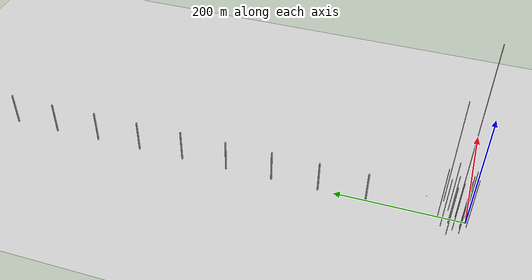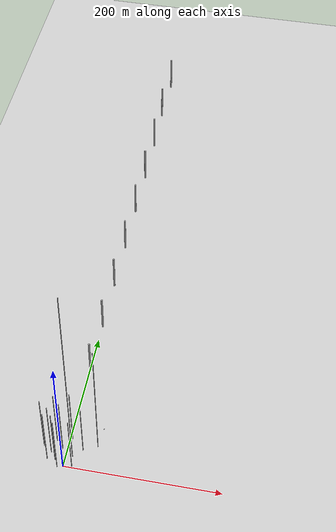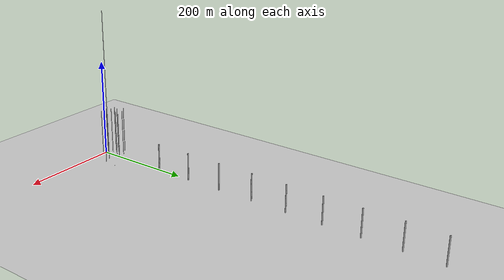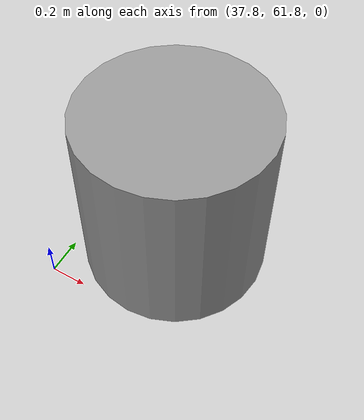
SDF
<sdf version="1.6">
 <world name="default">
  <scene>
   <shadows>0</shadows>
   <sky><time>10</time></sky>
   <ambient>0.4 0.4 0.4 1</ambient>
   <background>0.7 0.7 0.7 1</background>
  </scene>
  <physics name="default_physics" default="0" type="ode">
   <ode>
    <solver>
     <type>quick</type>
     <iters>100</iters>
     <sor>1</sor>
     <use_dynamic_moi_rescaling>0</use_dynamic_moi_rescaling>
    </solver>
    <constraints>
     <cfm>0</cfm>
     <erp>0.9</erp>
     <contact_max_correcting_vel>0.1</contact_max_correcting_vel>
     <contact_surface_layer>0</contact_surface_layer>
    </constraints>
   </ode>
   <real_time_update_rate>0</real_time_update_rate>
   <max_step_size>0.0025</max_step_size>
   <real_time_factor>1</real_time_factor>
  </physics>
  <light name="sun" type="directional">
   <pose>0 0 10 0 -0 0</pose>
   <diffuse>0.8 0.8 0.8 1</diffuse>
   <specular>0.2 0.2 0.2 1</specular>
   <attenuation>
    <range>1000</range>
    <constant>0.9</constant>
    <linear>0.01</linear>
    <quadratic>0.001</quadratic>
   </attenuation>
   <direction>-0.5 0.1 -0.9</direction>
   <spot><inner_angle>0</inner_angle><outer_angle>0</outer_angle><falloff>0</falloff></spot>
  </light>
  <model name="ground_plane">
   <static>1</static>
   <link name="link">
    <collision name="collision">
     <geometry><plane><normal>0 0 1</normal><size>5000 5000</size></plane></geometry>
     <surface><friction><ode><mu>1</mu><mu2>1</mu2></ode></friction></surface>
    </collision>
    <visual name="runway">
     <pose>0 0 0.005 0 0 -1.5707</pose>
     <cast_shadows>0</cast_shadows>
     <geometry><plane><normal>0 0 1</normal><size>1829 45</size></plane></geometry>
     <geometry><mesh><uri>/home/dhruv/Desktop/SAA_dev/algorithm/terrain.dae</uri></mesh></geometry>
     <material>
      <script><uri>file://media/materials/scripts/gazebo.material</uri><name>Gazebo/Runway</name></script>
     </material>
    </visual>
    <visual name="grass">
     <pose>0 0 -0.1 0 -0 0</pose>
     <cast_shadows>0</cast_shadows>
     <geometry><plane><normal>0 0 1</normal><size>5000 5000</size></plane></geometry>
     <material>
      <script><uri>file://media/materials/scripts/gazebo.material</uri><name>Gazebo/Grass</name></script>
     </material>
    </visual>
   </link>
  </model>
  <gravity>0 0 -9.8</gravity>
  <magnetic_field>6e-06 2.3e-05 -4.2e-05</magnetic_field>
  <atmosphere type="adiabatic"/>
  <spherical_coordinates>
   <surface_model>EARTH_WGS84</surface_model>
   <latitude_deg>0</latitude_deg>
   <longitude_deg>0</longitude_deg>
   <elevation>0</elevation>
   <heading_deg>0</heading_deg>
  </spherical_coordinates>
  <model name="unit_cylinder_clone_1">
   <pose>-0.036149 149.92 28.1274 1.3e-05 4e-06 0.448906</pose>
   <link name="link">
    <inertial>
     <mass>1</mass>
     <inertia><ixx>0.145833</ixx><ixy>0</ixy><ixz>0</ixz><iyy>0.145833</iyy><iyz>0</iyz><izz>0.125</izz></inertia>
    </inertial>
    <collision name="collision">
     <geometry><cylinder><radius>1.30653</radius><length>56.2549</length></cylinder></geometry>
    </collision>
    <visual name="visual">
     <geometry><cylinder><radius>1.30653</radius><length>56.2549</length></cylinder></geometry>
     <material>
      <script><name>Gazebo/Grey</name><uri>file://media/materials/scripts/gazebo.material</uri></script>
     </material>
    </visual>
   </link>
  </model>
  <model name="unit_box">
   <pose>67.7505 182.004 0.002892 0 6e-06 0</pose>
   <link name="link">
    <inertial>
     <mass>1</mass>
     <inertia>
      <ixx>0.166667</ixx>
      <ixy>0</ixy>
      <ixz>0</ixz>
      <iyy>0.166667</iyy>
      <iyz>0</iyz>
      <izz>0.166667</izz>
     </inertia>
    </inertial>
    <collision name="collision">
     <geometry><box><size>0.0026443 0.000159802 0.00578323</size></box></geometry>
    </collision>
    <visual name="visual">
     <geometry><box><size>0.0026443 0.000159802 0.00578323</size></box></geometry>
     <material>
      <script><name>Gazebo/Grey</name><uri>file://media/materials/scripts/gazebo.material</uri></script>
     </material>
    </visual>
   </link>
  </model>
  <model name="unit_cylinder_clone_1_clone_0">
   <pose>-0.046901 224.896 28.1274 1.3e-05 4e-06 0.448649</pose>
   <link name="link">
    <inertial>
     <mass>1</mass>
     <inertia><ixx>0.145833</ixx><ixy>0</ixy><ixz>0</ixz><iyy>0.145833</iyy><iyz>0</iyz><izz>0.125</izz></inertia>
    </inertial>
    <collision name="collision">
     <geometry><cylinder><radius>1.30653</radius><length>56.2549</length></cylinder></geometry>
    </collision>
    <visual name="visual">
     <geometry><cylinder><radius>1.30653</radius><length>56.2549</length></cylinder></geometry>
     <material>
      <script><name>Gazebo/Grey</name><uri>file://media/materials/scripts/gazebo.material</uri></script>
     </material>
    </visual>
   </link>
  </model>
  <model name="unit_cylinder_clone_1_clone_1">
   <pose>-0.045888 299.922 28.1274 1.3e-05 4e-06 0.445225</pose>
   <link name="link">
    <inertial>
     <mass>1</mass>
     <inertia><ixx>0.145833</ixx><ixy>0</ixy><ixz>0</ixz><iyy>0.145833</iyy><iyz>0</iyz><izz>0.125</izz></inertia>
    </inertial>
    <collision name="collision">
     <geometry><cylinder><radius>1.30653</radius><length>56.2549</length></cylinder></geometry>
    </collision>
    <visual name="visual">
     <geometry><cylinder><radius>1.30653</radius><length>56.2549</length></cylinder></geometry>
     <material>
      <script><name>Gazebo/Grey</name><uri>file://media/materials/scripts/gazebo.material</uri></script>
     </material>
    </visual>
   </link>
  </model>
  <model name="unit_cylinder_clone_1_clone_2">
   <pose>-0.042972 374.925 28.1274 1.3e-05 4e-06 0.428317</pose>
   <link name="link">
    <inertial>
     <mass>1</mass>
     <inertia><ixx>0.145833</ixx><ixy>0</ixy><ixz>0</ixz><iyy>0.145833</iyy><iyz>0</iyz><izz>0.125</izz></inertia>
    </inertial>
    <collision name="collision">
     <geometry><cylinder><radius>1.30653</radius><length>56.2549</length></cylinder></geometry>
    </collision>
    <visual name="visual">
     <geometry><cylinder><radius>1.30653</radius><length>56.2549</length></cylinder></geometry>
     <material>
      <script><name>Gazebo/Grey</name><uri>file://media/materials/scripts/gazebo.material</uri></script>
     </material>
    </visual>
   </link>
  </model>
  <model name="unit_cylinder_clone_1_clone_3">
   <pose>-0.042233 449.927 28.1274 1.3e-05 4e-06 0.434236</pose>
   <link name="link">
    <inertial>
     <mass>1</mass>
     <inertia><ixx>0.145833</ixx><ixy>0</ixy><ixz>0</ixz><iyy>0.145833</iyy><iyz>0</iyz><izz>0.125</izz></inertia>
    </inertial>
    <collision name="collision">
     <geometry><cylinder><radius>1.30653</radius><length>56.2549</length></cylinder></geometry>
    </collision>
    <visual name="visual">
     <geometry><cylinder><radius>1.30653</radius><length>56.2549</length></cylinder></geometry>
     <material>
      <script><name>Gazebo/Grey</name><uri>file://media/materials/scripts/gazebo.material</uri></script>
     </material>
    </visual>
   </link>
  </model>
  <model name="unit_cylinder_clone_1_clone_4">
   <pose>-0.041065 524.929 28.1274 1.3e-05 5e-06 0.429292</pose>
   <link name="link">
    <inertial>
     <mass>1</mass>
     <inertia><ixx>0.145833</ixx><ixy>0</ixy><ixz>0</ixz><iyy>0.145833</iyy><iyz>0</iyz><izz>0.125</izz></inertia>
    </inertial>
    <collision name="collision">
     <geometry><cylinder><radius>1.30653</radius><length>56.2549</length></cylinder></geometry>
    </collision>
    <visual name="visual">
     <geometry><cylinder><radius>1.30653</radius><length>56.2549</length></cylinder></geometry>
     <material>
      <script><name>Gazebo/Grey</name><uri>file://media/materials/scripts/gazebo.material</uri></script>
     </material>
    </visual>
   </link>
  </model>
  <model name="unit_cylinder_clone_1_clone_5">
   <pose>-0.039327 599.93 28.1274 1.2e-05 5e-06 0.420599</pose>
   <link name="link">
    <inertial>
     <mass>1</mass>
     <inertia><ixx>0.145833</ixx><ixy>0</ixy><ixz>0</ixz><iyy>0.145833</iyy><iyz>0</iyz><izz>0.125</izz></inertia>
    </inertial>
    <collision name="collision">
     <geometry><cylinder><radius>1.30653</radius><length>56.2549</length></cylinder></geometry>
    </collision>
    <visual name="visual">
     <geometry><cylinder><radius>1.30653</radius><length>56.2549</length></cylinder></geometry>
     <material>
      <script><name>Gazebo/Grey</name><uri>file://media/materials/scripts/gazebo.material</uri></script>
     </material>
    </visual>
   </link>
  </model>
  <model name="unit_cylinder_clone_1_clone_6">
   <pose>-1.58738 674.932 28.1274 1.3e-05 4e-06 0.420645</pose>
   <link name="link">
    <inertial>
     <mass>1</mass>
     <inertia><ixx>0.145833</ixx><ixy>0</ixy><ixz>0</ixz><iyy>0.145833</iyy><iyz>0</iyz><izz>0.125</izz></inertia>
    </inertial>
    <collision name="collision">
     <geometry><cylinder><radius>1.30653</radius><length>56.2549</length></cylinder></geometry>
    </collision>
    <visual name="visual">
     <geometry><cylinder><radius>1.30653</radius><length>56.2549</length></cylinder></geometry>
     <material>
      <script><name>Gazebo/Grey</name><uri>file://media/materials/scripts/gazebo.material</uri></script>
     </material>
    </visual>
   </link>
  </model>
  <model name="unit_cylinder_clone_1_clone_8">
   <pose>-0.02816 749.938 28.1274 1.3e-05 4e-06 0.403541</pose>
   <link name="link">
    <inertial>
     <mass>1</mass>
     <inertia><ixx>0.145833</ixx><ixy>0</ixy><ixz>0</ixz><iyy>0.145833</iyy><iyz>0</iyz><izz>0.125</izz></inertia>
    </inertial>
    <collision name="collision">
     <geometry><cylinder><radius>1.30653</radius><length>56.2549</length></cylinder></geometry>
    </collision>
    <visual name="visual">
     <geometry><cylinder><radius>1.30653</radius><length>56.2549</length></cylinder></geometry>
     <material>
      <script><name>Gazebo/Grey</name><uri>file://media/materials/scripts/gazebo.material</uri></script>
     </material>
    </visual>
   </link>
  </model>
  <model name="unit_cylinder_0">
   <pose>10.5259 2.06076 48.5485 1.2e-05 1.1e-05 0.049833</pose>
   <link name="link">
    <inertial>
     <mass>1</mass>
     <inertia><ixx>0.145833</ixx><ixy>0</ixy><ixz>0</ixz><iyy>0.145833</iyy><iyz>0</iyz><izz>0.125</izz></inertia>
    </inertial>
    <collision name="collision">
     <geometry><cylinder><radius>0.5</radius><length>97.0971</length></cylinder></geometry>
    </collision>
    <visual name="visual">
     <geometry><cylinder><radius>0.5</radius><length>97.0971</length></cylinder></geometry>
     <material>
      <script><name>Gazebo/Grey</name><uri>file://media/materials/scripts/gazebo.material</uri></script>
     </material>
    </visual>
   </link>
  </model>
  <model name="unit_cylinder_1">
   <pose>8.11935 16.0761 155.088 1.2e-05 1.1e-05 0.040348</pose>
   <link name="link">
    <inertial>
     <mass>1</mass>
     <inertia><ixx>0.145833</ixx><ixy>0</ixy><ixz>0</ixz><iyy>0.145833</iyy><iyz>0</iyz><izz>0.125</izz></inertia>
    </inertial>
    <collision name="collision">
     <geometry><cylinder><radius>0.5</radius><length>310.177</length></cylinder></geometry>
    </collision>
    <visual name="visual">
     <geometry><cylinder><radius>0.5</radius><length>310.177</length></cylinder></geometry>
     <material>
      <script><name>Gazebo/Grey</name><uri>file://media/materials/scripts/gazebo.material</uri></script>
     </material>
    </visual>
   </link>
  </model>
  <model name="unit_cylinder_2">
   <pose>18.965 27.6106 49.6365 1.3e-05 1e-05 0.095373</pose>
   <link name="link">
    <inertial>
     <mass>1</mass>
     <inertia><ixx>0.145833</ixx><ixy>0</ixy><ixz>0</ixz><iyy>0.145833</iyy><iyz>0</iyz><izz>0.125</izz></inertia>
    </inertial>
    <collision name="collision">
     <geometry><cylinder><radius>0.5</radius><length>99.273</length></cylinder></geometry>
    </collision>
    <visual name="visual">
     <geometry><cylinder><radius>0.5</radius><length>99.273</length></cylinder></geometry>
     <material>
      <script><name>Gazebo/Grey</name><uri>file://media/materials/scripts/gazebo.material</uri></script>
     </material>
    </visual>
   </link>
  </model>
  <model name="unit_cylinder_3">
   <pose>36.1711 36.2735 97.5265 1.3e-05 1e-05 0.097748</pose>
   <link name="link">
    <inertial>
     <mass>1</mass>
     <inertia><ixx>0.145833</ixx><ixy>0</ixy><ixz>0</ixz><iyy>0.145833</iyy><iyz>0</iyz><izz>0.125</izz></inertia>
    </inertial>
    <collision name="collision">
     <geometry><cylinder><radius>0.5</radius><length>195.053</length></cylinder></geometry>
    </collision>
    <visual name="visual">
     <geometry><cylinder><radius>0.5</radius><length>195.053</length></cylinder></geometry>
     <material>
      <script><name>Gazebo/Grey</name><uri>file://media/materials/scripts/gazebo.material</uri></script>
     </material>
    </visual>
   </link>
  </model>
  <model name="unit_cylinder_4">
   <pose>38.2869 62.2876 0.5 0 -0 0</pose>
   <link name="link">
    <inertial>
     <mass>1</mass>
     <inertia><ixx>0.145833</ixx><ixy>0</ixy><ixz>0</ixz><iyy>0.145833</iyy><iyz>0</iyz><izz>0.125</izz></inertia>
    </inertial>
    <collision name="collision">
     <geometry><cylinder><radius>0.5</radius><length>1</length></cylinder></geometry>
    </collision>
    <visual name="visual">
     <geometry><cylinder><radius>0.5</radius><length>1</length></cylinder></geometry>
     <material>
      <script><name>Gazebo/Grey</name><uri>file://media/materials/scripts/gazebo.material</uri></script>
     </material>
    </visual>
   </link>
  </model>
  <model name="unit_cylinder_0_clone">
   <pose>-1.40681 5.68792 48.5485 1.2e-05 1.1e-05 0.049719</pose>
   <link name="link">
    <inertial>
     <mass>1</mass>
     <inertia><ixx>0.145833</ixx><ixy>0</ixy><ixz>0</ixz><iyy>0.145833</iyy><iyz>0</iyz><izz>0.125</izz></inertia>
    </inertial>
    <collision name="collision">
     <geometry><cylinder><radius>0.5</radius><length>97.0971</length></cylinder></geometry>
    </collision>
    <visual name="visual">
     <geometry><cylinder><radius>0.5</radius><length>97.0971</length></cylinder></geometry>
     <material>
      <script><name>Gazebo/Grey</name><uri>file://media/materials/scripts/gazebo.material</uri></script>
     </material>
    </visual>
   </link>
  </model>
  <model name="unit_cylinder_0_clone_0">
   <pose>-12.2161 7.75396 48.5485 1.2e-05 1.1e-05 0.049832</pose>
   <link name="link">
    <inertial>
     <mass>1</mass>
     <inertia><ixx>0.145833</ixx><ixy>0</ixy><ixz>0</ixz><iyy>0.145833</iyy><iyz>0</iyz><izz>0.125</izz></inertia>
    </inertial>
    <collision name="collision">
     <geometry><cylinder><radius>0.5</radius><length>97.0971</length></cylinder></geometry>
    </collision>
    <visual name="visual">
     <geometry><cylinder><radius>0.5</radius><length>97.0971</length></cylinder></geometry>
     <material>
      <script><name>Gazebo/Grey</name><uri>file://media/materials/scripts/gazebo.material</uri></script>
     </material>
    </visual>
   </link>
  </model>
  <model name="unit_cylinder_0_clone_1">
   <pose>-7.36372 -1.63445 48.5485 1.2e-05 1.1e-05 0.049829</pose>
   <link name="link">
    <inertial>
     <mass>1</mass>
     <inertia><ixx>0.145833</ixx><ixy>0</ixy><ixz>0</ixz><iyy>0.145833</iyy><iyz>0</iyz><izz>0.125</izz></inertia>
    </inertial>
    <collision name="collision">
     <geometry><cylinder><radius>0.5</radius><length>97.0971</length></cylinder></geometry>
    </collision>
    <visual name="visual">
     <geometry><cylinder><radius>0.5</radius><length>97.0971</length></cylinder></geometry>
     <material>
      <script><name>Gazebo/Grey</name><uri>file://media/materials/scripts/gazebo.material</uri></script>
     </material>
    </visual>
   </link>
  </model>
  <model name="unit_cylinder_0_clone_2">
   <pose>-6.62447 25.1114 48.5485 1.2e-05 1.1e-05 0.049965</pose>
   <link name="link">
    <inertial>
     <mass>1</mass>
     <inertia><ixx>0.145833</ixx><ixy>0</ixy><ixz>0</ixz><iyy>0.145833</iyy><iyz>0</iyz><izz>0.125</izz></inertia>
    </inertial>
    <collision name="collision">
     <geometry><cylinder><radius>0.5</radius><length>97.0971</length></cylinder></geometry>
    </collision>
    <visual name="visual">
     <geometry><cylinder><radius>0.5</radius><length>97.0971</length></cylinder></geometry>
     <material>
      <script><name>Gazebo/Grey</name><uri>file://media/materials/scripts/gazebo.material</uri></script>
     </material>
    </visual>
   </link>
  </model>
  <model name="unit_cylinder_0_clone_3">
   <pose>-19.3814 17.4868 48.5485 1.2e-05 1.1e-05 0.049966</pose>
   <link name="link">
    <inertial>
     <mass>1</mass>
     <inertia><ixx>0.145833</ixx><ixy>0</ixy><ixz>0</ixz><iyy>0.145833</iyy><iyz>0</iyz><izz>0.125</izz></inertia>
    </inertial>
    <collision name="collision">
     <geometry><cylinder><radius>0.5</radius><length>97.0971</length></cylinder></geometry>
    </collision>
    <visual name="visual">
     <geometry><cylinder><radius>0.5</radius><length>97.0971</length></cylinder></geometry>
     <material>
      <script><name>Gazebo/Grey</name><uri>file://media/materials/scripts/gazebo.material</uri></script>
     </material>
    </visual>
   </link>
  </model>
  <model name="unit_cylinder_0_clone_4">
   <pose>-16.0862 35.0296 48.5485 1.2e-05 1.1e-05 0.049965</pose>
   <link name="link">
    <inertial>
     <mass>1</mass>
     <inertia><ixx>0.145833</ixx><ixy>0</ixy><ixz>0</ixz><iyy>0.145833</iyy><iyz>0</iyz><izz>0.125</izz></inertia>
    </inertial>
    <collision name="collision">
     <geometry><cylinder><radius>0.5</radius><length>97.0971</length></cylinder></geometry>
    </collision>
    <visual name="visual">
     <geometry><cylinder><radius>0.5</radius><length>97.0971</length></cylinder></geometry>
     <material>
      <script><name>Gazebo/Grey</name><uri>file://media/materials/scripts/gazebo.material</uri></script>
     </material>
    </visual>
   </link>
  </model>
  <model name="unit_cylinder_0_clone_5">
   <pose>-22.2947 7.55647 48.5485 1.2e-05 1.1e-05 0.049962</pose>
   <link name="link">
    <inertial>
     <mass>1</mass>
     <inertia><ixx>0.145833</ixx><ixy>0</ixy><ixz>0</ixz><iyy>0.145833</iyy><iyz>0</iyz><izz>0.125</izz></inertia>
    </inertial>
    <collision name="collision">
     <geometry><cylinder><radius>0.5</radius><length>97.0971</length></cylinder></geometry>
    </collision>
    <visual name="visual">
     <geometry><cylinder><radius>0.5</radius><length>97.0971</length></cylinder></geometry>
     <material>
      <script><name>Gazebo/Grey</name><uri>file://media/materials/scripts/gazebo.material</uri></script>
     </material>
    </visual>
   </link>
  </model>
  <model name="unit_cylinder_0_clone_6">
   <pose>-30.5373 25.2707 48.5485 1.2e-05 1.1e-05 0.049831</pose>
   <link name="link">
    <inertial>
     <mass>1</mass>
     <inertia><ixx>0.145833</ixx><ixy>0</ixy><ixz>0</ixz><iyy>0.145833</iyy><iyz>0</iyz><izz>0.125</izz></inertia>
    </inertial>
    <collision name="collision">
     <geometry><cylinder><radius>0.5</radius><length>97.0971</length></cylinder></geometry>
    </collision>
    <visual name="visual">
     <geometry><cylinder><radius>0.5</radius><length>97.0971</length></cylinder></geometry>
     <material>
      <script><name>Gazebo/Grey</name><uri>file://media/materials/scripts/gazebo.material</uri></script>
     </material>
    </visual>
   </link>
  </model>
  <model name="unit_cylinder_0_clone_6_clone">
   <pose>2.38518 41.1636 48.5485 1.2e-05 1.1e-05 0.049986</pose>
   <link name="link">
    <inertial>
     <mass>1</mass>
     <inertia><ixx>0.145833</ixx><ixy>0</ixy><ixz>0</ixz><iyy>0.145833</iyy><iyz>0</iyz><izz>0.125</izz></inertia>
    </inertial>
    <collision name="collision">
     <geometry><cylinder><radius>0.5</radius><length>97.0971</length></cylinder></geometry>
    </collision>
    <visual name="visual">
     <geometry><cylinder><radius>0.5</radius><length>97.0971</length></cylinder></geometry>
     <material>
      <script><name>Gazebo/Grey</name><uri>file://media/materials/scripts/gazebo.material</uri></script>
     </material>
    </visual>
   </link>
  </model>
 </world>
</sdf>
